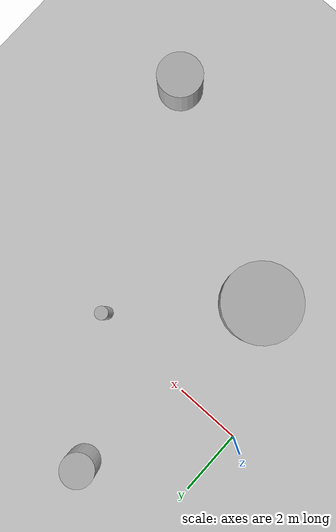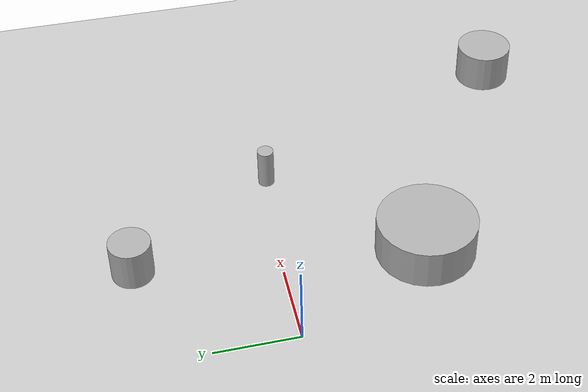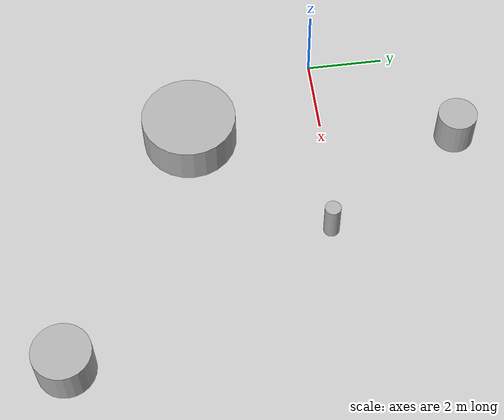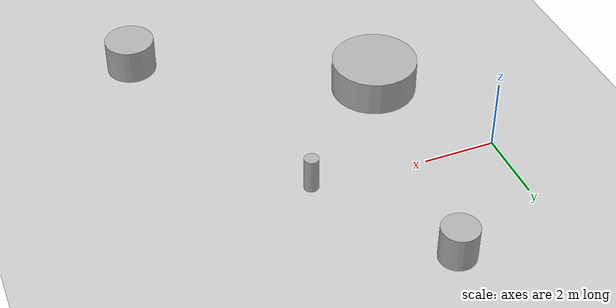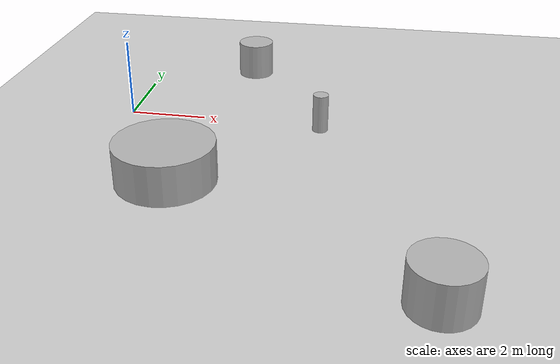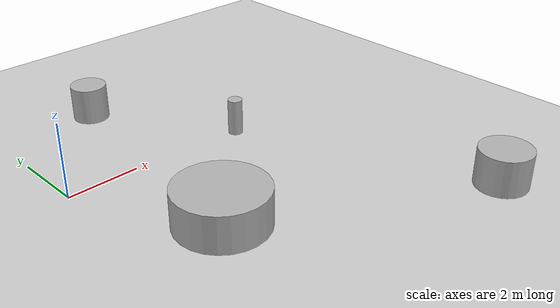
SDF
<sdf version="1.10">
 <world name="playpen">
  <physics name="1ms" type="ignore">
   <max_step_size>0.001</max_step_size>
   <real_time_factor>1</real_time_factor>
   <real_time_update_rate>1000</real_time_update_rate>
  </physics>
  <plugin name="gz::sim::systems::Physics" filename="gz-sim-physics-system"/>
  <plugin name="gz::sim::systems::Sensors" filename="gz-sim-sensors-system">
   <render_engine>ogre2</render_engine>
  </plugin>
  <plugin name="gz::sim::systems::UserCommands" filename="gz-sim-user-commands-system"/>
  <plugin name="gz::sim::systems::SceneBroadcaster" filename="gz-sim-scene-broadcaster-system"/>
  <plugin name="gz::sim::systems::Imu" filename="gz-sim-imu-system"/>
  <plugin name="gz::sim::systems::Magnetometer" filename="gz-sim-magnetometer-system"/>
  <plugin name="gz::sim::systems::NavSat" filename="gz-sim-navsat-system"/>
  <scene>
   <ambient>1 1 1 1</ambient>
   <background>0.800000012 0.800000012 0.800000012 1</background>
   <shadows>true</shadows>
  </scene>
  <spherical_coordinates>
   <latitude_deg>-35.3632621</latitude_deg>
   <longitude_deg>149.1652374</longitude_deg>
   <elevation>10</elevation>
   <heading_deg>0</heading_deg>
   <surface_model>EARTH_WGS84</surface_model>
  </spherical_coordinates>
  <gravity>0 0 -9.8000000000000007</gravity>
  <magnetic_field>5.5644999999999998e-06 2.2875799999999999e-05 -4.2388400000000002e-05</magnetic_field>
  <atmosphere type="adiabatic"/>
  <include>
   <uri>https://fuel.gazebosim.org/1.0/OpenRobotics/models/ground plane</uri>
   <name>ground plane</name>
   <pose>0 0 0 0 0 0.56999999999999995</pose>
  </include>
  <model name="cylinder">
   <pose>2.7898452189889271 3.4018918718376074 0.49999942638036005 -4.6486941055966266e-20 1.4350851530255513e-19 2.2397617279252689e-20</pose>
   <link name="cylinder_link">
    <inertial>
     <inertia>
      <ixx>0.14580000000000001</ixx>
      <ixy>0</ixy>
      <ixz>0</ixz>
      <iyy>0.14580000000000001</iyy>
      <iyz>0</iyz>
      <izz>0.125</izz>
     </inertia>
     <mass>1</mass>
    </inertial>
    <collision name="cylinder_collision">
     <geometry><cylinder><radius>0.5</radius><length>1</length></cylinder></geometry>
    </collision>
    <visual name="cylinder_visual">
     <geometry><cylinder><radius>0.5</radius><length>1</length></cylinder></geometry>
     <material>
      <ambient>0.300000012 0.300000012 0.300000012 1</ambient>
      <diffuse>0.699999988 0.699999988 0.699999988 1</diffuse>
      <specular>1 1 1 1</specular>
     </material>
    </visual>
   </link>
   <static>false</static>
  </model>
  <model name="cylinder_0">
   <pose>5.1808869218841114 -0.21644830628991543 0.49999942638036005 2.6972666314378312e-19 1.3000195148845876e-19 2.9070359674633796e-20</pose>
   <link name="cylinder_link">
    <inertial>
     <inertia>
      <ixx>0.14580000000000001</ixx>
      <ixy>0</ixy>
      <ixz>0</ixz>
      <iyy>0.14580000000000001</iyy>
      <iyz>0</iyz>
      <izz>0.125</izz>
     </inertia>
     <mass>1</mass>
    </inertial>
    <collision name="cylinder_collision">
     <geometry><cylinder><radius>0.20000000000000001</radius><length>1</length></cylinder></geometry>
    </collision>
    <visual name="cylinder_visual">
     <geometry><cylinder><radius>0.20000000000000001</radius><length>1</length></cylinder></geometry>
     <material>
      <ambient>0.300000012 0.300000012 0.300000012 1</ambient>
      <diffuse>0.699999988 0.699999988 0.699999988 1</diffuse>
      <specular>1 1 1 1</specular>
     </material>
    </visual>
   </link>
   <static>false</static>
  </model>
  <model name="cylinder_1">
   <pose>8.1247004721427274 -6.8650161602808453 0.49999942638036005 2.426759091799707e-19 7.7108855207326487e-21 4.7136133574452034e-21</pose>
   <link name="cylinder_link">
    <inertial>
     <inertia>
      <ixx>0.14580000000000001</ixx>
      <ixy>0</ixy>
      <ixz>0</ixz>
      <iyy>0.14580000000000001</iyy>
      <iyz>0</iyz>
      <izz>0.125</izz>
     </inertia>
     <mass>1</mass>
    </inertial>
    <collision name="cylinder_collision">
     <geometry><cylinder><radius>0.69999999999999996</radius><length>1</length></cylinder></geometry>
    </collision>
    <visual name="cylinder_visual">
     <geometry><cylinder><radius>0.69999999999999996</radius><length>1</length></cylinder></geometry>
     <material>
      <ambient>0.300000012 0.300000012 0.300000012 1</ambient>
      <diffuse>0.699999988 0.699999988 0.699999988 1</diffuse>
      <specular>1 1 1 1</specular>
     </material>
    </visual>
   </link>
   <static>false</static>
  </model>
  <model name="cylinder_2">
   <pose>1.9757235157070667 -3.419107680628739 0.49999942638036005 4.4087611998718463e-19 -1.2051323939235319e-21 2.9271845515062417e-21</pose>
   <link name="cylinder_link">
    <inertial>
     <inertia>
      <ixx>0.14580000000000001</ixx>
      <ixy>0</ixy>
      <ixz>0</ixz>
      <iyy>0.14580000000000001</iyy>
      <iyz>0</iyz>
      <izz>0.125</izz>
     </inertia>
     <mass>1</mass>
    </inertial>
    <collision name="cylinder_collision">
     <geometry><cylinder><radius>1.2</radius><length>1</length></cylinder></geometry>
    </collision>
    <visual name="cylinder_visual">
     <geometry><cylinder><radius>1.2</radius><length>1</length></cylinder></geometry>
     <material>
      <ambient>0.300000012 0.300000012 0.300000012 1</ambient>
      <diffuse>0.699999988 0.699999988 0.699999988 1</diffuse>
      <specular>1 1 1 1</specular>
     </material>
    </visual>
   </link>
   <static>false</static>
  </model>
  <light name="sun" type="directional">
   <pose>0 0 10 0 0 0</pose>
   <intensity>1</intensity>
   <direction>-0.5 0.10000000000000001 -0.90000000000000002</direction>
   <diffuse>0.800000012 0.800000012 0.800000012 1</diffuse>
   <specular>0.800000012 0.800000012 0.800000012 1</specular>
   <attenuation>
    <range>1000</range>
    <linear>0.01</linear>
    <constant>0.90000000000000002</constant>
    <quadratic>0.001</quadratic>
   </attenuation>
   <spot><inner_angle>0</inner_angle><outer_angle>0</outer_angle><falloff>0</falloff></spot>
  </light>
 </world>
</sdf>
